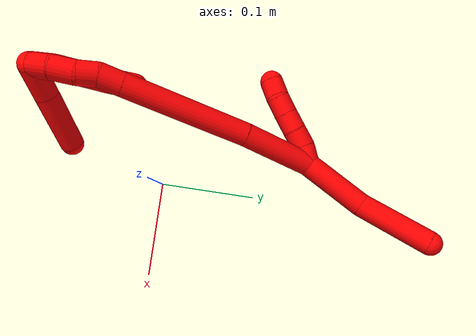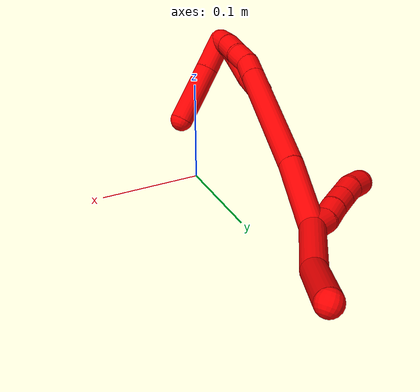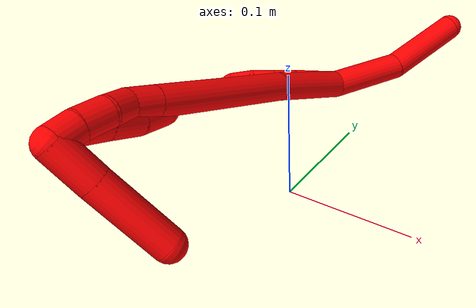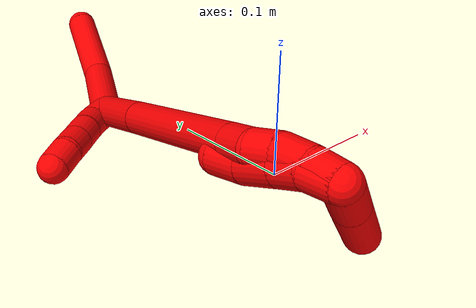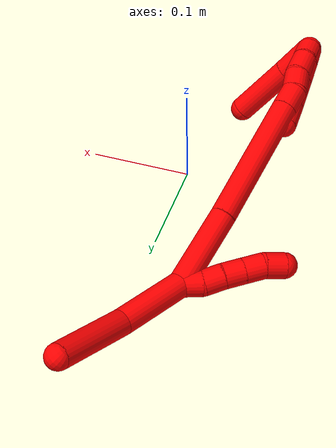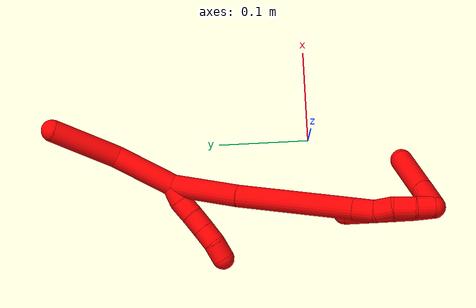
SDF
<sdf version="1.7">
 <world name="default">
  <model name="photoneo_s_sensor">
   <static>1</static>
   <pose>0 0 2 1.57079 1.57079 3.14159</pose>
   <link name="link">
    <inertial><mass>0.1</mass></inertial>
    <sensor name="sensor" type="depth">
     <update_rate>30</update_rate>
     <camera>
      <horizontal_fov>1.22</horizontal_fov>
      <image><width>1920</width><height>1200</height><format>B8G8R8</format></image>
      <clip><near>0.1</near><far>4</far></clip>
      <depth_camera><output>points</output></depth_camera>
     </camera>
     <plugin name="camera_plugin" filename="libgazebo_ros_depth_camera.so">
      <baseline>0.2</baseline>
      <alwaysOn>1</alwaysOn>
      <updateRate>0.0</updateRate>
      <cameraName>camera_ir</cameraName>
      <imageTopicName>/camera/color/image_raw</imageTopicName>
      <cameraInfoTopicName>/camera/color/camera_info</cameraInfoTopicName>
      <depthImageTopicName>/camera/depth/image_raw</depthImageTopicName>
      <depthImageCameraInfoTopicName>/camera/depth/camera_info</depthImageCameraInfoTopicName>
      <pointCloudTopicName>/camera/depth/points</pointCloudTopicName>
      <frameName>fr_optical</frameName>
      <pointCloudCutoff>0.1</pointCloudCutoff>
      <pointCloudCutoffMax>2.0</pointCloudCutoffMax>
      <distortionK1>0</distortionK1>
      <distortionK2>0</distortionK2>
      <distortionK3>0</distortionK3>
      <distortionT1>0</distortionT1>
      <distortionT2>0</distortionT2>
      <CxPrime>0</CxPrime>
      <Cx>0</Cx>
      <Cy>0</Cy>
      <focalLength>0</focalLength>
      <hackBaseline>0</hackBaseline>
     </plugin>
    </sensor>
   </link>
  </model>
  <model name="bin">
   <static>1</static>
   <link name="bottom">
    <collision name="collision-bottom">
     <pose>0 0 -0.01 0 -0 0</pose>
     <geometry><box><size>0.8 0.6 0.02</size></box></geometry>
     <surface>
      <friction><ode><mu>100</mu><mu2>100</mu2></ode></friction>
      <contact><collide_bitmask>65535</collide_bitmask></contact>
     </surface>
    </collision>
   </link>
   <link name="west_wall">
    <collision name="collision-west_wall">
     <pose>-0.41 0 0.1 0 -0 0</pose>
     <geometry><box><size>0.02 0.6 0.2</size></box></geometry>
     <surface>
      <friction><ode><mu>100</mu><mu2>100</mu2></ode></friction>
      <contact><collide_bitmask>65535</collide_bitmask></contact>
     </surface>
    </collision>
   </link>
   <link name="east_wall">
    <collision name="collision-east_wall">
     <pose>0.41 0 0.1 0 -0 0</pose>
     <geometry><box><size>0.02 0.6 0.2</size></box></geometry>
     <surface>
      <friction><ode><mu>100</mu><mu2>100</mu2></ode></friction>
      <contact><collide_bitmask>65535</collide_bitmask></contact>
     </surface>
    </collision>
   </link>
   <link name="south_wall">
    <collision name="collision-south_wall">
     <pose>0 -0.31 0.1 0 -0 0</pose>
     <geometry><box><size>0.8 0.02 0.2</size></box></geometry>
     <surface>
      <friction><ode><mu>100</mu><mu2>100</mu2></ode></friction>
      <contact><collide_bitmask>65535</collide_bitmask></contact>
     </surface>
    </collision>
   </link>
   <link name="north_wall">
    <collision name="collision-north_wall">
     <pose>0 0.31 0.1 0 -0 0</pose>
     <geometry><box><size>0.8 0.02 0.2</size></box></geometry>
     <surface>
      <friction><ode><mu>100</mu><mu2>100</mu2></ode></friction>
      <contact><collide_bitmask>65535</collide_bitmask></contact>
     </surface>
    </collision>
   </link>
  </model>
  <model name="2">
   <static>0</static>
   <link name="2">
    <collision name="collision-cylinder-e_1_2_8">
     <pose>0.016092 0.023314 -0.021472 -2.31508 0.469803 -0.999165</pose>
     <geometry><cylinder><radius>0.0125</radius><length>0.071092</length></cylinder></geometry>
     <surface>
      <friction><ode><mu>1.16</mu><mu2>1.16</mu2><slip1>0</slip1><slip2>0</slip2></ode></friction>
      <contact><ode><kp>1e+06</kp><kd>1</kd><max_vel>0</max_vel><min_depth>0.001</min_depth></ode></contact>
     </surface>
    </collision>
    <visual name="visual-cylinder-e_1_2_8">
     <pose>0.016092 0.023314 -0.021472 -2.31508 0.469803 -0.999165</pose>
     <geometry><cylinder><radius>0.0125</radius><length>0.071092</length></cylinder></geometry>
     <material><ambient>1 0 0 1</ambient></material>
    </visual>
    <collision name="collision-cylinder-e_2_8_6">
     <pose>0.053317 0.076935 -0.05678 -1.99907 0.565264 -0.848735</pose>
     <geometry><cylinder><radius>0.0125</radius><length>0.078908</length></cylinder></geometry>
     <surface>
      <friction><ode><mu>1.16</mu><mu2>1.16</mu2><slip1>0</slip1><slip2>0</slip2></ode></friction>
      <contact><ode><kp>1e+06</kp><kd>1</kd><max_vel>0</max_vel><min_depth>0.001</min_depth></ode></contact>
     </surface>
    </collision>
    <visual name="visual-cylinder-e_2_8_6">
     <pose>0.053317 0.076935 -0.05678 -1.99907 0.565264 -0.848735</pose>
     <geometry><cylinder><radius>0.0125</radius><length>0.078908</length></cylinder></geometry>
     <material><ambient>1 0 0 1</ambient></material>
    </visual>
    <collision name="collision-cylinder-e_1_2_9">
     <pose>-0.007524 -0.000778 0.006541 0.118344 -0.851755 -0.053736</pose>
     <geometry><cylinder><radius>0.0125</radius><length>0.02</length></cylinder></geometry>
     <surface>
      <friction><ode><mu>1.16</mu><mu2>1.16</mu2><slip1>0</slip1><slip2>0</slip2></ode></friction>
      <contact><ode><kp>1e+06</kp><kd>1</kd><max_vel>0</max_vel><min_depth>0.001</min_depth></ode></contact>
     </surface>
    </collision>
    <visual name="visual-cylinder-e_1_2_9">
     <pose>-0.007524 -0.000778 0.006541 0.118344 -0.851755 -0.053736</pose>
     <geometry><cylinder><radius>0.0125</radius><length>0.02</length></cylinder></geometry>
     <material><ambient>1 0 0 1</ambient></material>
    </visual>
    <collision name="collision-cylinder-e_2_9_10">
     <pose>-0.02069 -0.00447 0.020806 0.360757 -0.599402 -0.112583</pose>
     <geometry><cylinder><radius>0.0125</radius><length>0.02</length></cylinder></geometry>
     <surface>
      <friction><ode><mu>1.16</mu><mu2>1.16</mu2><slip1>0</slip1><slip2>0</slip2></ode></friction>
      <contact><ode><kp>1e+06</kp><kd>1</kd><max_vel>0</max_vel><min_depth>0.001</min_depth></ode></contact>
     </surface>
    </collision>
    <visual name="visual-cylinder-e_2_9_10">
     <pose>-0.02069 -0.00447 0.020806 0.360757 -0.599402 -0.112583</pose>
     <geometry><cylinder><radius>0.0125</radius><length>0.02</length></cylinder></geometry>
     <material><ambient>1 0 0 1</ambient></material>
    </visual>
    <collision name="collision-cylinder-e_3_10_11">
     <pose>-0.032626 -0.010261 0.03575 0.379261 -0.680777 -0.135749</pose>
     <geometry><cylinder><radius>0.0125</radius><length>0.02</length></cylinder></geometry>
     <surface>
      <friction><ode><mu>1.16</mu><mu2>1.16</mu2><slip1>0</slip1><slip2>0</slip2></ode></friction>
      <contact><ode><kp>1e+06</kp><kd>1</kd><max_vel>0</max_vel><min_depth>0.001</min_depth></ode></contact>
     </surface>
    </collision>
    <visual name="visual-cylinder-e_3_10_11">
     <pose>-0.032626 -0.010261 0.03575 0.379261 -0.680777 -0.135749</pose>
     <geometry><cylinder><radius>0.0125</radius><length>0.02</length></cylinder></geometry>
     <material><ambient>1 0 0 1</ambient></material>
    </visual>
    <collision name="collision-cylinder-e_4_11_12">
     <pose>-0.045163 -0.015774 0.050322 0.344186 -0.674277 -0.121699</pose>
     <geometry><cylinder><radius>0.0125</radius><length>0.02</length></cylinder></geometry>
     <surface>
      <friction><ode><mu>1.16</mu><mu2>1.16</mu2><slip1>0</slip1><slip2>0</slip2></ode></friction>
      <contact><ode><kp>1e+06</kp><kd>1</kd><max_vel>0</max_vel><min_depth>0.001</min_depth></ode></contact>
     </surface>
    </collision>
    <visual name="visual-cylinder-e_4_11_12">
     <pose>-0.045163 -0.015774 0.050322 0.344186 -0.674277 -0.121699</pose>
     <geometry><cylinder><radius>0.0125</radius><length>0.02</length></cylinder></geometry>
     <material><ambient>1 0 0 1</ambient></material>
    </visual>
    <collision name="collision-cylinder-e_5_12_5">
     <pose>-0.059449 -0.020445 0.06326 0.349403 -0.934383 -0.177599</pose>
     <geometry><cylinder><radius>0.0125</radius><length>0.02</length></cylinder></geometry>
     <surface>
      <friction><ode><mu>1.16</mu><mu2>1.16</mu2><slip1>0</slip1><slip2>0</slip2></ode></friction>
      <contact><ode><kp>1e+06</kp><kd>1</kd><max_vel>0</max_vel><min_depth>0.001</min_depth></ode></contact>
     </surface>
    </collision>
    <visual name="visual-cylinder-e_5_12_5">
     <pose>-0.059449 -0.020445 0.06326 0.349403 -0.934383 -0.177599</pose>
     <geometry><cylinder><radius>0.0125</radius><length>0.02</length></cylinder></geometry>
     <material><ambient>1 0 0 1</ambient></material>
    </visual>
    <collision name="collision-cylinder-e_1_2_13">
     <pose>-0.000775 -0.026874 0.028365 0.758428 -0.019819 -0.007898</pose>
     <geometry><cylinder><radius>0.0125</radius><length>0.078163</length></cylinder></geometry>
     <surface>
      <friction><ode><mu>1.16</mu><mu2>1.16</mu2><slip1>0</slip1><slip2>0</slip2></ode></friction>
      <contact><ode><kp>1e+06</kp><kd>1</kd><max_vel>0</max_vel><min_depth>0.001</min_depth></ode></contact>
     </surface>
    </collision>
    <visual name="visual-cylinder-e_1_2_13">
     <pose>-0.000775 -0.026874 0.028365 0.758428 -0.019819 -0.007898</pose>
     <geometry><cylinder><radius>0.0125</radius><length>0.078163</length></cylinder></geometry>
     <material><ambient>1 0 0 1</ambient></material>
    </visual>
    <collision name="collision-cylinder-e_2_13_14">
     <pose>-0.002148 -0.102386 0.102014 0.821069 -0.009015 -0.003924</pose>
     <geometry><cylinder><radius>0.0125</radius><length>0.132916</length></cylinder></geometry>
     <surface>
      <friction><ode><mu>1.16</mu><mu2>1.16</mu2><slip1>0</slip1><slip2>0</slip2></ode></friction>
      <contact><ode><kp>1e+06</kp><kd>1</kd><max_vel>0</max_vel><min_depth>0.001</min_depth></ode></contact>
     </surface>
    </collision>
    <visual name="visual-cylinder-e_2_13_14">
     <pose>-0.002148 -0.102386 0.102014 0.821069 -0.009015 -0.003924</pose>
     <geometry><cylinder><radius>0.0125</radius><length>0.132916</length></cylinder></geometry>
     <material><ambient>1 0 0 1</ambient></material>
    </visual>
    <collision name="collision-cylinder-e_3_14_15">
     <pose>-0.00296 -0.15973 0.155388 0.822185 -0.01787 -0.00779</pose>
     <geometry><cylinder><radius>0.0125</radius><length>0.023773</length></cylinder></geometry>
     <surface>
      <friction><ode><mu>1.16</mu><mu2>1.16</mu2><slip1>0</slip1><slip2>0</slip2></ode></friction>
      <contact><ode><kp>1e+06</kp><kd>1</kd><max_vel>0</max_vel><min_depth>0.001</min_depth></ode></contact>
     </surface>
    </collision>
    <visual name="visual-cylinder-e_3_14_15">
     <pose>-0.00296 -0.15973 0.155388 0.822185 -0.01787 -0.00779</pose>
     <geometry><cylinder><radius>0.0125</radius><length>0.023773</length></cylinder></geometry>
     <material><ambient>1 0 0 1</ambient></material>
    </visual>
    <collision name="collision-cylinder-e_4_15_16">
     <pose>-0.001342 -0.177322 0.168353 1.06889 0.178664 0.105935</pose>
     <geometry><cylinder><radius>0.0125</radius><length>0.020598</length></cylinder></geometry>
     <surface>
      <friction><ode><mu>1.16</mu><mu2>1.16</mu2><slip1>0</slip1><slip2>0</slip2></ode></friction>
      <contact><ode><kp>1e+06</kp><kd>1</kd><max_vel>0</max_vel><min_depth>0.001</min_depth></ode></contact>
     </surface>
    </collision>
    <visual name="visual-cylinder-e_4_15_16">
     <pose>-0.001342 -0.177322 0.168353 1.06889 0.178664 0.105935</pose>
     <geometry><cylinder><radius>0.0125</radius><length>0.020598</length></cylinder></geometry>
     <material><ambient>1 0 0 1</ambient></material>
    </visual>
    <collision name="collision-cylinder-e_5_16_17">
     <pose>-0.000251 -0.196963 0.179014 1.07737 -0.060523 -0.036178</pose>
     <geometry><cylinder><radius>0.0125</radius><length>0.02447</length></cylinder></geometry>
     <surface>
      <friction><ode><mu>1.16</mu><mu2>1.16</mu2><slip1>0</slip1><slip2>0</slip2></ode></friction>
      <contact><ode><kp>1e+06</kp><kd>1</kd><max_vel>0</max_vel><min_depth>0.001</min_depth></ode></contact>
     </surface>
    </collision>
    <visual name="visual-cylinder-e_5_16_17">
     <pose>-0.000251 -0.196963 0.179014 1.07737 -0.060523 -0.036178</pose>
     <geometry><cylinder><radius>0.0125</radius><length>0.02447</length></cylinder></geometry>
     <material><ambient>1 0 0 1</ambient></material>
    </visual>
    <collision name="collision-cylinder-e_6_17_1">
     <pose>-0.002135 -0.217079 0.188244 1.21802 -0.11419 -0.079686</pose>
     <geometry><cylinder><radius>0.0125</radius><length>0.02008</length></cylinder></geometry>
     <surface>
      <friction><ode><mu>1.16</mu><mu2>1.16</mu2><slip1>0</slip1><slip2>0</slip2></ode></friction>
      <contact><ode><kp>1e+06</kp><kd>1</kd><max_vel>0</max_vel><min_depth>0.001</min_depth></ode></contact>
     </surface>
    </collision>
    <visual name="visual-cylinder-e_6_17_1">
     <pose>-0.002135 -0.217079 0.188244 1.21802 -0.11419 -0.079686</pose>
     <geometry><cylinder><radius>0.0125</radius><length>0.02008</length></cylinder></geometry>
     <material><ambient>1 0 0 1</ambient></material>
    </visual>
    <collision name="collision-cylinder-e_1_1_18">
     <pose>-0.00368 -0.229086 0.173988 2.99315 -0.022363 -0.29853</pose>
     <geometry><cylinder><radius>0.0125</radius><length>0.035808</length></cylinder></geometry>
     <surface>
      <friction><ode><mu>1.16</mu><mu2>1.16</mu2><slip1>0</slip1><slip2>0</slip2></ode></friction>
      <contact><ode><kp>1e+06</kp><kd>1</kd><max_vel>0</max_vel><min_depth>0.001</min_depth></ode></contact>
     </surface>
    </collision>
    <visual name="visual-cylinder-e_1_1_18">
     <pose>-0.00368 -0.229086 0.173988 2.99315 -0.022363 -0.29853</pose>
     <geometry><cylinder><radius>0.0125</radius><length>0.035808</length></cylinder></geometry>
     <material><ambient>1 0 0 1</ambient></material>
    </visual>
    <collision name="collision-cylinder-e_2_18_4">
     <pose>-0.003963 -0.235857 0.124456 3.01276 0.003633 0.056302</pose>
     <geometry><cylinder><radius>0.0125</radius><length>0.064192</length></cylinder></geometry>
     <surface>
      <friction><ode><mu>1.16</mu><mu2>1.16</mu2><slip1>0</slip1><slip2>0</slip2></ode></friction>
      <contact><ode><kp>1e+06</kp><kd>1</kd><max_vel>0</max_vel><min_depth>0.001</min_depth></ode></contact>
     </surface>
    </collision>
    <visual name="visual-cylinder-e_2_18_4">
     <pose>-0.003963 -0.235857 0.124456 3.01276 0.003633 0.056302</pose>
     <geometry><cylinder><radius>0.0125</radius><length>0.064192</length></cylinder></geometry>
     <material><ambient>1 0 0 1</ambient></material>
    </visual>
    <collision name="collision-cylinder-e_1_1_19">
     <pose>-0.003353 -0.21611 0.187306 -1.97225 -0.00652 0.00985</pose>
     <geometry><cylinder><radius>0.0125</radius><length>0.022443</length></cylinder></geometry>
     <surface>
      <friction><ode><mu>1.16</mu><mu2>1.16</mu2><slip1>0</slip1><slip2>0</slip2></ode></friction>
      <contact><ode><kp>1e+06</kp><kd>1</kd><max_vel>0</max_vel><min_depth>0.001</min_depth></ode></contact>
     </surface>
    </collision>
    <visual name="visual-cylinder-e_1_1_19">
     <pose>-0.003353 -0.21611 0.187306 -1.97225 -0.00652 0.00985</pose>
     <geometry><cylinder><radius>0.0125</radius><length>0.022443</length></cylinder></geometry>
     <material><ambient>1 0 0 1</ambient></material>
    </visual>
    <collision name="collision-cylinder-e_2_19_20">
     <pose>-0.005035 -0.197555 0.176183 -2.25716 -0.150214 0.315209</pose>
     <geometry><cylinder><radius>0.0125</radius><length>0.021508</length></cylinder></geometry>
     <surface>
      <friction><ode><mu>1.16</mu><mu2>1.16</mu2><slip1>0</slip1><slip2>0</slip2></ode></friction>
      <contact><ode><kp>1e+06</kp><kd>1</kd><max_vel>0</max_vel><min_depth>0.001</min_depth></ode></contact>
     </surface>
    </collision>
    <visual name="visual-cylinder-e_2_19_20">
     <pose>-0.005035 -0.197555 0.176183 -2.25716 -0.150214 0.315209</pose>
     <geometry><cylinder><radius>0.0125</radius><length>0.021508</length></cylinder></geometry>
     <material><ambient>1 0 0 1</ambient></material>
    </visual>
    <collision name="collision-cylinder-e_3_20_21">
     <pose>-0.008969 -0.178151 0.159902 -2.2774 -0.156892 0.337667</pose>
     <geometry><cylinder><radius>0.0125</radius><length>0.029761</length></cylinder></geometry>
     <surface>
      <friction><ode><mu>1.16</mu><mu2>1.16</mu2><slip1>0</slip1><slip2>0</slip2></ode></friction>
      <contact><ode><kp>1e+06</kp><kd>1</kd><max_vel>0</max_vel><min_depth>0.001</min_depth></ode></contact>
     </surface>
    </collision>
    <visual name="visual-cylinder-e_3_20_21">
     <pose>-0.008969 -0.178151 0.159902 -2.2774 -0.156892 0.337667</pose>
     <geometry><cylinder><radius>0.0125</radius><length>0.029761</length></cylinder></geometry>
     <material><ambient>1 0 0 1</ambient></material>
    </visual>
    <collision name="collision-cylinder-e_4_21_3">
     <pose>-0.011921 -0.155818 0.143434 -2.12637 -0.047659 0.085647</pose>
     <geometry><cylinder><radius>0.0125</radius><length>0.026287</length></cylinder></geometry>
     <surface>
      <friction><ode><mu>1.16</mu><mu2>1.16</mu2><slip1>0</slip1><slip2>0</slip2></ode></friction>
      <contact><ode><kp>1e+06</kp><kd>1</kd><max_vel>0</max_vel><min_depth>0.001</min_depth></ode></contact>
     </surface>
    </collision>
    <visual name="visual-cylinder-e_4_21_3">
     <pose>-0.011921 -0.155818 0.143434 -2.12637 -0.047659 0.085647</pose>
     <geometry><cylinder><radius>0.0125</radius><length>0.026287</length></cylinder></geometry>
     <material><ambient>1 0 0 1</ambient></material>
    </visual>
    <collision name="collision-sphere-3">
     <pose>-0.012547 -0.144664 0.13651 0 -0 0</pose>
     <geometry><sphere><radius>0.0125</radius></sphere></geometry>
     <surface>
      <friction><ode><mu>1.16</mu><mu2>1.16</mu2><slip1>0</slip1><slip2>0</slip2></ode></friction>
      <contact><ode><kp>1e+06</kp><kd>1</kd><max_vel>0</max_vel><min_depth>0.001</min_depth></ode></contact>
     </surface>
    </collision>
    <visual name="visual-sphere-3">
     <pose>-0.012547 -0.144664 0.13651 0 -0 0</pose>
     <geometry><sphere><radius>0.0125</radius></sphere></geometry>
     <material><ambient>1 0 0 1</ambient></material>
    </visual>
    <collision name="collision-sphere-21">
     <pose>-0.011295 -0.166973 0.150359 0 -0 0</pose>
     <geometry><sphere><radius>0.0125</radius></sphere></geometry>
     <surface>
      <friction><ode><mu>1.16</mu><mu2>1.16</mu2><slip1>0</slip1><slip2>0</slip2></ode></friction>
      <contact><ode><kp>1e+06</kp><kd>1</kd><max_vel>0</max_vel><min_depth>0.001</min_depth></ode></contact>
     </surface>
    </collision>
    <visual name="visual-sphere-21">
     <pose>-0.011295 -0.166973 0.150359 0 -0 0</pose>
     <geometry><sphere><radius>0.0125</radius></sphere></geometry>
     <material><ambient>1 0 0 1</ambient></material>
    </visual>
    <collision name="collision-sphere-20">
     <pose>-0.006644 -0.18933 0.169444 0 -0 0</pose>
     <geometry><sphere><radius>0.0125</radius></sphere></geometry>
     <surface>
      <friction><ode><mu>1.16</mu><mu2>1.16</mu2><slip1>0</slip1><slip2>0</slip2></ode></friction>
      <contact><ode><kp>1e+06</kp><kd>1</kd><max_vel>0</max_vel><min_depth>0.001</min_depth></ode></contact>
     </surface>
    </collision>
    <visual name="visual-sphere-20">
     <pose>-0.006644 -0.18933 0.169444 0 -0 0</pose>
     <geometry><sphere><radius>0.0125</radius></sphere></geometry>
     <material><ambient>1 0 0 1</ambient></material>
    </visual>
    <collision name="collision-sphere-19">
     <pose>-0.003426 -0.205781 0.182921 0 -0 0</pose>
     <geometry><sphere><radius>0.0125</radius></sphere></geometry>
     <surface>
      <friction><ode><mu>1.16</mu><mu2>1.16</mu2><slip1>0</slip1><slip2>0</slip2></ode></friction>
      <contact><ode><kp>1e+06</kp><kd>1</kd><max_vel>0</max_vel><min_depth>0.001</min_depth></ode></contact>
     </surface>
    </collision>
    <visual name="visual-sphere-19">
     <pose>-0.003426 -0.205781 0.182921 0 -0 0</pose>
     <geometry><sphere><radius>0.0125</radius></sphere></geometry>
     <material><ambient>1 0 0 1</ambient></material>
    </visual>
    <collision name="collision-sphere-11">
     <pose>-0.03892 -0.013138 0.042969 0 -0 0</pose>
     <geometry><sphere><radius>0.0125</radius></sphere></geometry>
     <surface>
      <friction><ode><mu>1.16</mu><mu2>1.16</mu2><slip1>0</slip1><slip2>0</slip2></ode></friction>
      <contact><ode><kp>1e+06</kp><kd>1</kd><max_vel>0</max_vel><min_depth>0.001</min_depth></ode></contact>
     </surface>
    </collision>
    <visual name="visual-sphere-11">
     <pose>-0.03892 -0.013138 0.042969 0 -0 0</pose>
     <geometry><sphere><radius>0.0125</radius></sphere></geometry>
     <material><ambient>1 0 0 1</ambient></material>
    </visual>
    <collision name="collision-sphere-10">
     <pose>-0.026332 -0.007384 0.028532 0 -0 0</pose>
     <geometry><sphere><radius>0.0125</radius></sphere></geometry>
     <surface>
      <friction><ode><mu>1.16</mu><mu2>1.16</mu2><slip1>0</slip1><slip2>0</slip2></ode></friction>
      <contact><ode><kp>1e+06</kp><kd>1</kd><max_vel>0</max_vel><min_depth>0.001</min_depth></ode></contact>
     </surface>
    </collision>
    <visual name="visual-sphere-10">
     <pose>-0.026332 -0.007384 0.028532 0 -0 0</pose>
     <geometry><sphere><radius>0.0125</radius></sphere></geometry>
     <material><ambient>1 0 0 1</ambient></material>
    </visual>
    <collision name="collision-sphere-6">
     <pose>0.07445 0.107243 -0.070616 0 -0 0</pose>
     <geometry><sphere><radius>0.0125</radius></sphere></geometry>
     <surface>
      <friction><ode><mu>1.16</mu><mu2>1.16</mu2><slip1>0</slip1><slip2>0</slip2></ode></friction>
      <contact><ode><kp>1e+06</kp><kd>1</kd><max_vel>0</max_vel><min_depth>0.001</min_depth></ode></contact>
     </surface>
    </collision>
    <visual name="visual-sphere-6">
     <pose>0.07445 0.107243 -0.070616 0 -0 0</pose>
     <geometry><sphere><radius>0.0125</radius></sphere></geometry>
     <material><ambient>1 0 0 1</ambient></material>
    </visual>
    <collision name="collision-sphere-9">
     <pose>-0.015049 -0.001555 0.013081 0 -0 0</pose>
     <geometry><sphere><radius>0.0125</radius></sphere></geometry>
     <surface>
      <friction><ode><mu>1.16</mu><mu2>1.16</mu2><slip1>0</slip1><slip2>0</slip2></ode></friction>
      <contact><ode><kp>1e+06</kp><kd>1</kd><max_vel>0</max_vel><min_depth>0.001</min_depth></ode></contact>
     </surface>
    </collision>
    <visual name="visual-sphere-9">
     <pose>-0.015049 -0.001555 0.013081 0 -0 0</pose>
     <geometry><sphere><radius>0.0125</radius></sphere></geometry>
     <material><ambient>1 0 0 1</ambient></material>
    </visual>
    <collision name="collision-sphere-2">
     <geometry><sphere><radius>0.0125</radius></sphere></geometry>
     <surface>
      <friction><ode><mu>1.16</mu><mu2>1.16</mu2><slip1>0</slip1><slip2>0</slip2></ode></friction>
      <contact><ode><kp>1e+06</kp><kd>1</kd><max_vel>0</max_vel><min_depth>0.001</min_depth></ode></contact>
     </surface>
    </collision>
    <visual name="visual-sphere-2">
     <geometry><sphere><radius>0.0125</radius></sphere></geometry>
     <material><ambient>1 0 0 1</ambient></material>
    </visual>
    <collision name="collision-sphere-8">
     <pose>0.032184 0.046628 -0.042943 0 -0 0</pose>
     <geometry><sphere><radius>0.0125</radius></sphere></geometry>
     <surface>
      <friction><ode><mu>1.16</mu><mu2>1.16</mu2><slip1>0</slip1><slip2>0</slip2></ode></friction>
      <contact><ode><kp>1e+06</kp><kd>1</kd><max_vel>0</max_vel><min_depth>0.001</min_depth></ode></contact>
     </surface>
    </collision>
    <visual name="visual-sphere-8">
     <pose>0.032184 0.046628 -0.042943 0 -0 0</pose>
     <geometry><sphere><radius>0.0125</radius></sphere></geometry>
     <material><ambient>1 0 0 1</ambient></material>
    </visual>
    <collision name="collision-sphere-12">
     <pose>-0.051406 -0.01841 0.057676 0 -0 0</pose>
     <geometry><sphere><radius>0.0125</radius></sphere></geometry>
     <surface>
      <friction><ode><mu>1.16</mu><mu2>1.16</mu2><slip1>0</slip1><slip2>0</slip2></ode></friction>
      <contact><ode><kp>1e+06</kp><kd>1</kd><max_vel>0</max_vel><min_depth>0.001</min_depth></ode></contact>
     </surface>
    </collision>
    <visual name="visual-sphere-12">
     <pose>-0.051406 -0.01841 0.057676 0 -0 0</pose>
     <geometry><sphere><radius>0.0125</radius></sphere></geometry>
     <material><ambient>1 0 0 1</ambient></material>
    </visual>
    <collision name="collision-sphere-5">
     <pose>-0.067491 -0.022479 0.068844 0 -0 0</pose>
     <geometry><sphere><radius>0.0125</radius></sphere></geometry>
     <surface>
      <friction><ode><mu>1.16</mu><mu2>1.16</mu2><slip1>0</slip1><slip2>0</slip2></ode></friction>
      <contact><ode><kp>1e+06</kp><kd>1</kd><max_vel>0</max_vel><min_depth>0.001</min_depth></ode></contact>
     </surface>
    </collision>
    <visual name="visual-sphere-5">
     <pose>-0.067491 -0.022479 0.068844 0 -0 0</pose>
     <geometry><sphere><radius>0.0125</radius></sphere></geometry>
     <material><ambient>1 0 0 1</ambient></material>
    </visual>
    <collision name="collision-sphere-13">
     <pose>-0.001549 -0.053749 0.056729 0 -0 0</pose>
     <geometry><sphere><radius>0.0125</radius></sphere></geometry>
     <surface>
      <friction><ode><mu>1.16</mu><mu2>1.16</mu2><slip1>0</slip1><slip2>0</slip2></ode></friction>
      <contact><ode><kp>1e+06</kp><kd>1</kd><max_vel>0</max_vel><min_depth>0.001</min_depth></ode></contact>
     </surface>
    </collision>
    <visual name="visual-sphere-13">
     <pose>-0.001549 -0.053749 0.056729 0 -0 0</pose>
     <geometry><sphere><radius>0.0125</radius></sphere></geometry>
     <material><ambient>1 0 0 1</ambient></material>
    </visual>
    <collision name="collision-sphere-14">
     <pose>-0.002747 -0.151023 0.1473 0 -0 0</pose>
     <geometry><sphere><radius>0.0125</radius></sphere></geometry>
     <surface>
      <friction><ode><mu>1.16</mu><mu2>1.16</mu2><slip1>0</slip1><slip2>0</slip2></ode></friction>
      <contact><ode><kp>1e+06</kp><kd>1</kd><max_vel>0</max_vel><min_depth>0.001</min_depth></ode></contact>
     </surface>
    </collision>
    <visual name="visual-sphere-14">
     <pose>-0.002747 -0.151023 0.1473 0 -0 0</pose>
     <geometry><sphere><radius>0.0125</radius></sphere></geometry>
     <material><ambient>1 0 0 1</ambient></material>
    </visual>
    <collision name="collision-sphere-15">
     <pose>-0.003172 -0.168437 0.163477 0 -0 0</pose>
     <geometry><sphere><radius>0.0125</radius></sphere></geometry>
     <surface>
      <friction><ode><mu>1.16</mu><mu2>1.16</mu2><slip1>0</slip1><slip2>0</slip2></ode></friction>
      <contact><ode><kp>1e+06</kp><kd>1</kd><max_vel>0</max_vel><min_depth>0.001</min_depth></ode></contact>
     </surface>
    </collision>
    <visual name="visual-sphere-15">
     <pose>-0.003172 -0.168437 0.163477 0 -0 0</pose>
     <geometry><sphere><radius>0.0125</radius></sphere></geometry>
     <material><ambient>1 0 0 1</ambient></material>
    </visual>
    <collision name="collision-sphere-16">
     <pose>0.000489 -0.186207 0.173229 0 -0 0</pose>
     <geometry><sphere><radius>0.0125</radius></sphere></geometry>
     <surface>
      <friction><ode><mu>1.16</mu><mu2>1.16</mu2><slip1>0</slip1><slip2>0</slip2></ode></friction>
      <contact><ode><kp>1e+06</kp><kd>1</kd><max_vel>0</max_vel><min_depth>0.001</min_depth></ode></contact>
     </surface>
    </collision>
    <visual name="visual-sphere-16">
     <pose>0.000489 -0.186207 0.173229 0 -0 0</pose>
     <geometry><sphere><radius>0.0125</radius></sphere></geometry>
     <material><ambient>1 0 0 1</ambient></material>
    </visual>
    <collision name="collision-sphere-17">
     <pose>-0.000991 -0.207718 0.184798 0 -0 0</pose>
     <geometry><sphere><radius>0.0125</radius></sphere></geometry>
     <surface>
      <friction><ode><mu>1.16</mu><mu2>1.16</mu2><slip1>0</slip1><slip2>0</slip2></ode></friction>
      <contact><ode><kp>1e+06</kp><kd>1</kd><max_vel>0</max_vel><min_depth>0.001</min_depth></ode></contact>
     </surface>
    </collision>
    <visual name="visual-sphere-17">
     <pose>-0.000991 -0.207718 0.184798 0 -0 0</pose>
     <geometry><sphere><radius>0.0125</radius></sphere></geometry>
     <material><ambient>1 0 0 1</ambient></material>
    </visual>
    <collision name="collision-sphere-1">
     <pose>-0.003279 -0.226439 0.191691 0 -0 0</pose>
     <geometry><sphere><radius>0.0125</radius></sphere></geometry>
     <surface>
      <friction><ode><mu>1.16</mu><mu2>1.16</mu2><slip1>0</slip1><slip2>0</slip2></ode></friction>
      <contact><ode><kp>1e+06</kp><kd>1</kd><max_vel>0</max_vel><min_depth>0.001</min_depth></ode></contact>
     </surface>
    </collision>
    <visual name="visual-sphere-1">
     <pose>-0.003279 -0.226439 0.191691 0 -0 0</pose>
     <geometry><sphere><radius>0.0125</radius></sphere></geometry>
     <material><ambient>1 0 0 1</ambient></material>
    </visual>
    <collision name="collision-sphere-18">
     <pose>-0.00408 -0.231733 0.156286 0 -0 0</pose>
     <geometry><sphere><radius>0.0125</radius></sphere></geometry>
     <surface>
      <friction><ode><mu>1.16</mu><mu2>1.16</mu2><slip1>0</slip1><slip2>0</slip2></ode></friction>
      <contact><ode><kp>1e+06</kp><kd>1</kd><max_vel>0</max_vel><min_depth>0.001</min_depth></ode></contact>
     </surface>
    </collision>
    <visual name="visual-sphere-18">
     <pose>-0.00408 -0.231733 0.156286 0 -0 0</pose>
     <geometry><sphere><radius>0.0125</radius></sphere></geometry>
     <material><ambient>1 0 0 1</ambient></material>
    </visual>
    <collision name="collision-sphere-4">
     <pose>-0.003847 -0.23998 0.092626 0 -0 0</pose>
     <geometry><sphere><radius>0.0125</radius></sphere></geometry>
     <surface>
      <friction><ode><mu>1.16</mu><mu2>1.16</mu2><slip1>0</slip1><slip2>0</slip2></ode></friction>
      <contact><ode><kp>1e+06</kp><kd>1</kd><max_vel>0</max_vel><min_depth>0.001</min_depth></ode></contact>
     </surface>
    </collision>
    <visual name="visual-sphere-4">
     <pose>-0.003847 -0.23998 0.092626 0 -0 0</pose>
     <geometry><sphere><radius>0.0125</radius></sphere></geometry>
     <material><ambient>1 0 0 1</ambient></material>
    </visual>
    <inertial>
     <pose>0.000532 -0.089979 0.079156 0 -0 0</pose>
     <mass>0.75</mass>
     <inertia><ixx>0.000282</ixx><ixy>0</ixy><ixz>0</ixz><iyy>8.7e-05</iyy><iyz>0</iyz><izz>9.8e-05</izz></inertia>
    </inertial>
   </link>
   <pose>-0.043998 0.154014 0.012505 0.35571 -0.71291 0.07696</pose>
  </model>
 </world>
</sdf>
